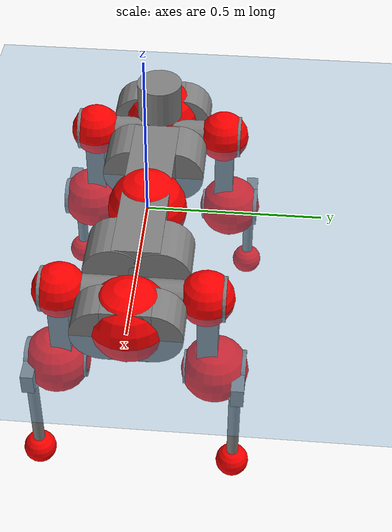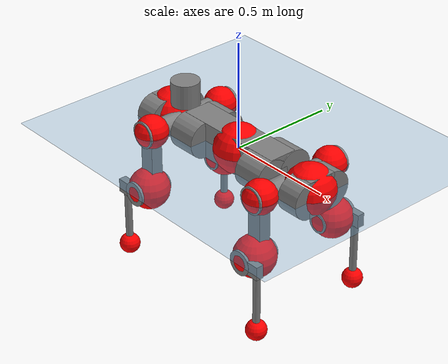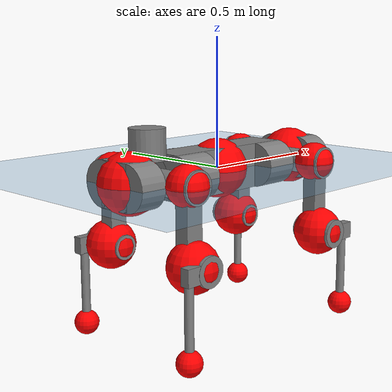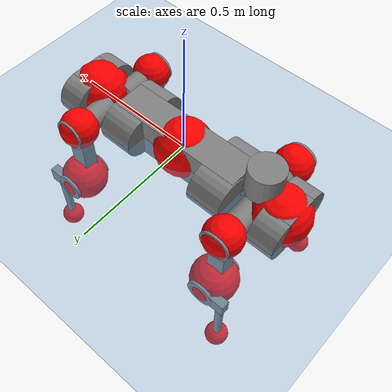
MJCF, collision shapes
<mujoco model="anymal_c">
  <compiler angle="radian" assetdir="assets" balanceinertia="true" inertiafromgeom="false"/>

  <option timestep="0.005" density="1.2" viscosity="2e-05"/>

  <size nkey="1"/>

  <visual>
    <quality shadowsize="8192"/>
    <map shadowclip="0.5"/>
  </visual>

  <default>
    <default class="/">
      <material specular="0" shininess="0.25"/>
      <geom contype="0" conaffinity="0" group="1" solref="-1000 -80"/>
      <site size="0.01 0.005 0.005" group="5"/>
      <general forcelimited="true" forcerange="-80 80" biastype="affine" gainprm="80" biasprm="0 -80 -2"/>
      <default class="anymal_c">
        <joint armature="0.01" damping="0.01" frictionloss="0.1"/>
        <default class="visual">
          <geom type="mesh" group="2"/>
          <default class="visual_zflip"/>
        </default>
        <default class="collision">
          <geom type="cylinder" group="3"/>
          <default class="foot">
            <geom size="0.03 0 0" type="sphere" condim="6" priority="1" friction="0.8 0.02 0.01" solimp="0.015 1 0.03"/>
          </default>
        </default>
      </default>
      <default class="reward_collision_sphere">
        <geom group="5" rgba="1 0 0 1"/>
      </default>
    </default>
  </default>

  <asset>
    <texture type="skybox" colorspace="auto" name="//unnamed_texture_0" builtin="gradient" rgb1="0.95 0.95 0.95" rgb2="0.95 0.95 0.95" width="100" height="600"/>
    <texture type="2d" colorspace="auto" name="texplane" builtin="checker" rgb1="0.345 0.575 0.748" rgb2="0.345 0.575 0.748" markrgb="1 1 1" width="512" height="512"/>
    <texture type="2d" colorspace="linear" name="base" file="base.png"/>
    <texture type="2d" colorspace="linear" name="top_shell" file="top_shell.png"/>
    <texture type="2d" colorspace="linear" name="bottom_shell" file="bottom_shell.png"/>
    <texture type="2d" colorspace="linear" name="remote" file="remote.png"/>
    <texture type="2d" colorspace="linear" name="hatch" file="hatch.png"/>
    <texture type="2d" colorspace="linear" name="handle" file="handle.png"/>
    <texture type="2d" colorspace="linear" name="face" file="face.png"/>
    <texture type="2d" colorspace="linear" name="battery" file="battery.png"/>
    <texture type="2d" colorspace="linear" name="lidar_cage" file="lidar_cage.png"/>
    <texture type="2d" colorspace="linear" name="depth_camera" file="depth_camera.png"/>
    <texture type="2d" colorspace="linear" name="wide_angle_camera" file="wide_angle_camera.png"/>
    <texture type="2d" colorspace="linear" name="lidar" file="lidar.png"/>
    <texture type="2d" colorspace="linear" name="drive" file="drive.png"/>
    <texture type="2d" colorspace="linear" name="hip_l" file="hip_l.png"/>
    <texture type="2d" colorspace="linear" name="shank_l" file="shank_l.png"/>
    <texture type="2d" colorspace="linear" name="foot" file="foot.png"/>
    <texture type="2d" colorspace="linear" name="thigh" file="thigh.png"/>
    <texture type="2d" colorspace="linear" name="shank_r" file="shank_r.png"/>
    <texture type="2d" colorspace="linear" name="hip_r" file="hip_r.png"/>
    <material name="MatPlane" class="/" texture="texplane" texuniform="true" texrepeat="2 2" specular="0.9" shininess="0.5"/>
    <material name="black_plastic" class="/" rgba="0.007 0.007 0.007 1"/>
    <material name="green" class="/" rgba="0.052 0.178 0.033 1"/>
    <material name="red" class="/" rgba="0.178 0.006 0.005 1"/>
    <material name="yellow" class="/" rgba="0.178 0.119 0.006 1"/>
    <material name="lwl" class="/" rgba="0.8 0.8 0.8 1"/>
    <material name="base" class="/" texture="base"/>
    <material name="top_shell" class="/" texture="top_shell"/>
    <material name="bottom_shell" class="/" texture="bottom_shell"/>
    <material name="hip_l" class="/" texture="hip_l"/>
    <material name="thigh" class="/" texture="thigh"/>
    <material name="shank_l" class="/" texture="shank_l"/>
    <material name="foot" class="/" texture="foot"/>
    <material name="hip_r" class="/" texture="hip_r"/>
    <material name="shank" class="/" texture="shank_r"/>
    <material name="hatch" class="/" texture="hatch"/>
    <material name="remote" class="/" texture="remote"/>
    <material name="handle" class="/" texture="handle"/>
    <material name="face" class="/" texture="face"/>
    <material name="depth_camera" class="/" texture="depth_camera"/>
    <material name="wide_angle_camera" class="/" texture="wide_angle_camera"/>
    <material name="battery" class="/" texture="battery"/>
    <material name="lidar_cage" class="/" texture="lidar_cage"/>
    <material name="lidar" class="/" texture="lidar"/>
    <material name="drive" class="/" texture="drive"/>
    <mesh name="base_0" class="/" file="base_0.obj"/>
    <mesh name="base_1" class="/" file="base_1.obj"/>
    <mesh name="base_2" class="/" file="base_2.obj"/>
    <mesh name="base_3" class="/" file="base_3.obj"/>
    <mesh name="base_4" class="/" file="base_4.obj"/>
    <mesh name="base_5" class="/" file="base_5.obj"/>
    <mesh name="top_shell" class="/" file="top_shell.obj"/>
    <mesh name="bottom_shell" class="/" file="bottom_shell.obj"/>
    <mesh name="remote" class="/" file="remote.obj"/>
    <mesh name="handle" class="/" file="handle.obj"/>
    <mesh name="face" class="/" file="face.obj"/>
    <mesh name="wide_angle_camera" class="/" file="wide_angle_camera.obj"/>
    <mesh name="depth_camera" class="/" file="depth_camera.obj"/>
    <mesh name="battery" class="/" file="battery.obj"/>
    <mesh name="lidar_cage" class="/" file="lidar_cage.obj"/>
    <mesh name="lidar" class="/" file="lidar.obj"/>
    <mesh name="drive" class="/" file="drive.obj"/>
    <mesh name="hip_l" class="/" file="hip_l.obj"/>
    <mesh name="thigh" class="/" file="thigh.obj"/>
    <mesh name="shank_l" class="/" file="shank_l.obj"/>
    <mesh name="foot" class="/" file="foot.obj"/>
    <mesh name="hip_r" class="/" file="hip_r.obj"/>
    <mesh name="hatch" class="/" file="hatch.obj"/>
    <mesh name="shank_r" class="/" file="shank_r.obj"/>
  </asset>

  <worldbody>
    <geom name="floor" class="/" size="100 100 0.125" type="plane" group="0" material="MatPlane"/>
    <light name="toplight_shadow" class="/" pos="0 0 5" dir="0.0990148 0.0990148 -0.990148" type="directional" ambient="0.04 0.04 0.04" diffuse="0.55 0.55 0.55" specular="0.12 0.12 0.12"/>
    <light name="toplight_fill" class="/" pos="0 0 5" dir="0.0990148 0.0990148 -0.990148" type="directional" castshadow="false" ambient="0.04 0.04 0.04" diffuse="0.3 0.3 0.3" specular="0.08 0.08 0.08"/>
    <body name="trunk" childclass="anymal_c" pos="2.0586e-05 6.96082e-05 -0.000167122" quat="1 -1.92552e-05 -3.96269e-05 -0.000107889">
      <inertial pos="0.00245526 0.00167743 0.0482385" quat="0.500335 0.49967 0.500072 0.499924" mass="17.1185" diaginertia="0.593866 0.408493 0.199105"/>
      <joint name="//unnamed_joint_0" type="free" armature="0" damping="0" frictionloss="0"/>
      <geom name="//unnamed_geom_1" class="visual" material="green" mesh="base_0"/>
      <geom name="//unnamed_geom_2" class="visual" material="yellow" mesh="base_1"/>
      <geom name="//unnamed_geom_3" class="visual" material="red" mesh="base_2"/>
      <geom name="//unnamed_geom_4" class="visual" material="black_plastic" mesh="base_3"/>
      <geom name="//unnamed_geom_5" class="visual" material="lwl" mesh="base_4"/>
      <geom name="//unnamed_geom_6" class="visual" material="base" mesh="base_5"/>
      <geom name="trunk_1" class="collision" size="0.278285 0.0671722 0.0863643" type="box"/>
      <geom name="trunk_2" class="collision" size="0.0863643 0.0695712" pos="0.213348 0.064166 0" quat="0.707107 0 0.707107 0"/>
      <geom name="trunk_3" class="collision" size="0.0863643 0.0695712" pos="-0.213348 0.064166 0" quat="0.707107 0 0.707107 0"/>
      <geom name="trunk_4" class="collision" size="0.0863643 0.0695712" pos="0.213348 -0.064166 0" quat="0.707107 0 0.707107 0"/>
      <geom name="trunk_5" class="collision" size="0.0863643 0.0695712" pos="-0.213348 -0.064166 0" quat="0.707107 0 0.707107 0"/>
      <geom name="//unnamed_geom_12" class="visual" material="top_shell" mesh="top_shell"/>
      <geom name="//unnamed_geom_13" class="visual" material="bottom_shell" mesh="bottom_shell"/>
      <geom name="//unnamed_geom_14" class="visual" material="remote" mesh="remote"/>
      <geom name="//unnamed_geom_15" class="visual" material="handle" mesh="handle"/>
      <geom name="//unnamed_geom_16" class="visual" pos="0.406586 0 0" quat="1 0 0 0" material="face" mesh="face"/>
      <geom name="trunk_6" class="collision" size="0.0527782 0.0671722 0.0863643" pos="0.460536 0 0" type="box"/>
      <geom name="//unnamed_geom_18" class="collision" size="0.0863643 0.0527782" pos="0.460536 0.064166 0" quat="0.707107 0 0.707107 0"/>
      <geom name="//unnamed_geom_19" class="collision" size="0.0863643 0.0527782" pos="0.460536 -0.064166 0" quat="0.707107 0 0.707107 0"/>
      <geom name="//unnamed_geom_20" class="visual" pos="0.452836 0 -0.0286549" quat="0.965926 0 0.258819 0" material="depth_camera" mesh="depth_camera"/>
      <geom name="//unnamed_geom_21" class="visual" pos="0.503206 0 0.0146892" material="wide_angle_camera" mesh="wide_angle_camera"/>
      <geom name="//unnamed_geom_22" class="visual_zflip" pos="-0.406586 0 0" quat="0 0 0 1" material="face" mesh="face"/>
      <geom name="trunk_7" class="collision" size="0.0527782 0.0671722 0.0863643" pos="-0.460536 0 0" quat="0 0 0 1" type="box"/>
      <geom name="//unnamed_geom_24" class="collision" size="0.0863643 0.0527782" pos="-0.460536 -0.064166 0" quat="0 -0.707107 0 0.707107"/>
      <geom name="//unnamed_geom_25" class="collision" size="0.0863643 0.0527782" pos="-0.460536 0.064166 0" quat="0 -0.707107 0 0.707107"/>
      <geom name="//unnamed_geom_26" class="visual" pos="-0.452836 0 -0.0286549" quat="0 -0.258819 0 0.965926" material="depth_camera" mesh="depth_camera"/>
      <geom name="//unnamed_geom_27" class="visual_zflip" pos="-0.503206 0 0.0146892" quat="0 0 0 1" material="wide_angle_camera" mesh="wide_angle_camera"/>
      <geom name="//unnamed_geom_28" class="visual" material="battery" mesh="battery"/>
      <geom name="//unnamed_geom_29" class="visual" pos="0 0.0692445 0.0285026" quat="0.683013 -0.183013 0.183013 0.683013" material="depth_camera" mesh="depth_camera"/>
      <geom name="//unnamed_geom_30" class="visual" pos="0 -0.0692445 0.0285026" quat="0.683013 0.183013 0.183013 -0.683013" material="depth_camera" mesh="depth_camera"/>
      <geom name="//unnamed_geom_31" class="visual" pos="-0.357051 0 0.0721214" quat="1 0 0 0" material="lidar_cage" mesh="lidar_cage"/>
      <geom name="trunk_8" class="collision" size="0.0671722 0.0575762" pos="-0.357051 0 0.130996"/>
      <geom name="//unnamed_geom_33" class="visual" pos="-0.357051 -2.52427e-05 0.139533" quat="0.707107 0 0 -0.707107" material="lidar" mesh="lidar"/>
      <geom name="//unnamed_geom_34" class="visual" pos="0.294174 0.0953552 -1.11413e-09" quat="0.258819 0.965926 0 0" material="drive" mesh="drive"/>
      <geom name="//unnamed_geom_35" class="visual" pos="0.294174 -0.0953552 1.11413e-09" quat="0.258819 -0.965926 0 0" material="drive" mesh="drive"/>
      <geom name="//unnamed_geom_36" class="visual" pos="-0.294174 0.0953552 1.11413e-09" quat="0 0 0.965926 -0.258819" material="drive" mesh="drive"/>
      <geom name="//unnamed_geom_37" class="visual" pos="-0.294174 -0.0953552 -1.11413e-09" quat="0 0 -0.965926 -0.258819" material="drive" mesh="drive"/>
      <geom name="//unnamed_geom_38" class="visual" pos="0.113785 0 0.0716308" quat="1 0 0 0" material="hatch" mesh="hatch"/>
      <geom name="//unnamed_geom_39" class="reward_collision_sphere" size="0.115152"/>
      <geom name="//unnamed_geom_40" class="reward_collision_sphere" size="0.115152" pos="0.441409 0 0"/>
      <geom name="//unnamed_geom_41" class="reward_collision_sphere" size="0.115152" pos="-0.441409 0 0"/>
      <site name="imu" pos="0.239435 0.0111746 0.0404783" size="0.00959603"/>
      <camera name="track" pos="0 -1.83331 0" quat="0.707107 0.707107 0 0" mode="trackcom"/>
      <camera name="ego_camera" pos="0.441409 0 -0.0392497" quat="-0.5 -0.5 0.5 0.5"/>
      <body name="LF_HIP" pos="0.294914 0.095929 0.000962396" quat="0.258736 0.965948 7.95086e-05 0.000376741">
        <inertial pos="0.054471 -0.0134244 -0.00716006" quat="-0.129608 0.708655 -0.135856 0.680112" mass="2.49407" diaginertia="0.00535867 0.00324187 0.00299626"/>
        <joint name="LF_HAA" pos="0 0 0" axis="0.999996 -0.001202 -0.00239872" range="-0.699183 0.486919" armature="0.00939791" damping="0.00607559" frictionloss="0.0911517"/>
        <geom name="//unnamed_geom_42" class="visual" pos="0 -6.55392e-05 1.07648e-05" quat="0.258819 -0.965926 0 0" material="hip_l" mesh="hip_l"/>
        <geom name="//unnamed_geom_43" class="visual" pos="0.0587564 -0.0703729 -0.0411075" quat="0.183013 -0.683013 0.683013 0.183013" material="drive" mesh="drive"/>
        <geom name="//unnamed_geom_44" class="collision" size="0.0479801 0.0671722" pos="0.0587564 -0.010963 -0.00677549" quat="-0.353553 -0.612372 0.612372 -0.353553"/>
        <body name="LF_THIGH" pos="0.0591309 -0.0663201 -0.0417999" quat="0.183083 -0.682887 0.68309 0.183122">
          <inertial pos="0.0307177 -3.0991e-05 -0.240293" quat="0.993138 -0.00537851 -0.0808554 0.0843281" mass="2.6526" diaginertia="0.0275683 0.0191573 0.00364411"/>
          <joint name="LF_HFE" pos="0 0 0" axis="0.999997 -0.00108873 0.00198432" stiffness="0.00506087" range="-3.14261 3.11808" armature="0.00949716" damping="0.00807623" frictionloss="0.0985212"/>
          <geom name="//unnamed_geom_45" class="visual" pos="0.00127835 2.01438e-06 0" quat="0.707107 0 0 -0.707107" material="thigh" mesh="thigh"/>
          <geom name="//unnamed_geom_46" class="collision" size="0.0623742 0.0383841" pos="0.0392363 0 0" quat="0.5 0.5 -0.5 -0.5"/>
          <geom name="//unnamed_geom_47" class="collision" size="0.0359851 0.0287881 0.135605" pos="0.0294272 0 -0.138663" quat="0.707107 0 0 -0.707107" type="box"/>
          <geom name="//unnamed_geom_48" class="visual" pos="0.0983851 0 -0.279654" quat="1 0 0 0" material="drive" mesh="drive"/>
          <geom name="//unnamed_geom_49" class="collision" size="0.0479801 0.0671722" pos="0.0297215 0 -0.279654" quat="0.707107 0 0.707107 0"/>
          <geom name="//unnamed_geom_50" class="reward_collision_sphere" size="0.0767682" pos="0.0245227 0 0"/>
          <body name="LF_SHANK" pos="0.0990263 -0.000553672 -0.279788" quat="1 0.000461559 0.000712219 -0.00028809">
            <inertial pos="0.0050615 -0.0560613 -0.0793224" quat="0.992921 -0.116056 -0.000908782 -0.0252731" mass="0.523666" diaginertia="0.00924425 0.00587882 0.00101711"/>
            <joint name="LF_KFE" pos="0 0 0" axis="0.999998 -0.000710183 0.00175154" range="-3.12996 3.13484" armature="0.00998867" damping="0.0133986" frictionloss="0.0950596"/>
            <geom name="//unnamed_geom_51" class="visual" pos="0.000416843 0.00222263 0" quat="0.707107 0 0 -0.707107" material="shank_l" mesh="shank_l"/>
            <geom name="LF_kfe_act" class="collision" size="0.0575762 0.0191921" pos="0.0196182 0 0" quat="0.5 0.5 -0.5 -0.5"/>
            <geom name="//unnamed_geom_53" class="collision" size="0.0551762 0.0323866 0.0182325" pos="0.0196182 -0.0527068 0" quat="0.5 0.5 -0.5 -0.5" type="box"/>
            <geom name="//unnamed_geom_54" class="visual" pos="0.0128008 -0.0799037 -0.331631" quat="0.382683 0 0 -0.92388" material="foot" mesh="foot"/>
            <geom name="LF_calf" class="collision" size="0.016793 0.135546" pos="0.0128009 -0.08062 -0.165815" quat="0.707107 0 0 -0.707107"/>
            <geom name="LF_foot" class="foot" size="0.030671" pos="0.0128009 -0.08062 -0.309553" quat="0.707107 0 0 -0.707107"/>
            <geom name="//unnamed_geom_57" class="reward_collision_sphere" size="0.0959603" pos="-0.0490454 0 0"/>
            <geom name="//unnamed_geom_58" class="reward_collision_sphere" size="0.0479801" pos="0.0128009 -0.08062 -0.309553"/>
            <site name="LF_foot" class="foot" pos="0.0128009 -0.08062 -0.309553" quat="0.707107 0 0 -0.707107" size="0.00959603"/>
          </body>
        </body>
      </body>
      <body name="RF_HIP" pos="0.29375 -0.0955034 -0.000136186" quat="0.25862 -0.965979 0.00019001 -1.40448e-05">
        <inertial pos="0.0555424 0.0147083 -0.00844484" quat="0.135201 0.679412 0.128023 0.70974" mass="2.39013" diaginertia="0.00520336 0.00316136 0.00299373"/>
        <joint name="RF_HAA" pos="0 0 0" axis="0.999997 0.000130689 0.0025947" range="-0.482076 0.690192" armature="0.00972988" damping="0.00638674" frictionloss="0.0972474"/>
        <geom name="//unnamed_geom_59" class="visual" pos="0 6.55387e-05 1.07647e-05" quat="0.258819 0.965926 0 0" material="hip_r" mesh="hip_r"/>
        <geom name="//unnamed_geom_60" class="visual" pos="0.0587564 0.0703729 -0.0411075" quat="0.183013 0.683013 0.683013 -0.183013" material="drive" mesh="drive"/>
        <geom name="//unnamed_geom_61" class="collision" size="0.0479801 0.0671722" pos="0.0587564 0.010963 -0.00677549" quat="-0.353553 0.612372 0.612372 0.353553"/>
        <body name="RF_THIGH" pos="0.0611788 0.0660792 -0.0422019" quat="0.183444 0.683018 0.682979 -0.182686">
          <inertial pos="0.030011 -0.000509707 -0.240885" quat="0.992733 -0.00597976 -0.0807011 0.0890683" mass="2.81661" diaginertia="0.0276279 0.0201129 0.00391172"/>
          <joint name="RF_HFE" pos="0 0 0" axis="0.999961 -0.00874174 -0.00131705" stiffness="0.0058215" range="-3.09909 3.10667" armature="0.00944179" damping="0.00366795" frictionloss="0.0972098"/>
          <geom name="//unnamed_geom_62" class="visual" pos="0.00127835 2.01438e-06 0" quat="0.707107 0 0 -0.707107" material="thigh" mesh="thigh"/>
          <geom name="//unnamed_geom_63" class="collision" size="0.0623742 0.0383841" pos="0.0392363 0 0" quat="0.5 0.5 0.5 0.5"/>
          <geom name="//unnamed_geom_64" class="collision" size="0.0359851 0.0287881 0.135605" pos="0.0294272 0 -0.138663" quat="0.707107 0 0 0.707107" type="box"/>
          <geom name="//unnamed_geom_65" class="visual" pos="0.0983851 0 -0.279654" quat="1 0 0 0" material="drive" mesh="drive"/>
          <geom name="//unnamed_geom_66" class="collision" size="0.0479801 0.0671722" pos="0.0297215 0 -0.279654" quat="0.707107 0 0.707107 0"/>
          <geom name="//unnamed_geom_67" class="reward_collision_sphere" size="0.0767682" pos="0.0245227 0 0"/>
          <body name="RF_SHANK" pos="0.0999003 -0.000310047 -0.280304" quat="1 -8.39686e-05 7.73253e-05 1.18554e-05">
            <inertial pos="0.00654669 0.0564128 -0.0769123" quat="0.993233 0.113628 0.000998476 0.0240104" mass="0.50661" diaginertia="0.00919393 0.00601732 0.00102486"/>
            <joint name="RF_KFE" pos="0 0 0" axis="0.999921 -0.00613953 0.010989" range="-3.1506 3.11632" armature="0.00960224" damping="0.0105822" frictionloss="0.0854524"/>
            <geom name="//unnamed_geom_68" class="visual" pos="0.00041684 -0.00222262 0" quat="0.707107 0 0 0.707107" material="shank" mesh="shank_r"/>
            <geom name="RF_kfe_act" class="collision" size="0.0575762 0.0191921" pos="0.0196182 0 0" quat="0.5 0.5 0.5 0.5"/>
            <geom name="//unnamed_geom_70" class="collision" size="0.0551762 0.0323866 0.0182325" pos="0.0196182 0.0527068 0" quat="0.5 0.5 0.5 0.5" type="box"/>
            <geom name="//unnamed_geom_71" class="visual" pos="0.012801 0.0799037 -0.331631" quat="0.382683 0 0 0.92388" material="foot" mesh="foot"/>
            <geom name="RF_calf" class="collision" size="0.016793 0.135546" pos="0.0128009 0.08062 -0.165815" quat="0.707107 0 0 0.707107"/>
            <geom name="RF_foot" class="foot" size="0.0297707" pos="0.0128009 0.08062 -0.309553" quat="0.707107 0 0 0.707107"/>
            <geom name="//unnamed_geom_74" class="reward_collision_sphere" size="0.0959603" pos="-0.0490454 0 0"/>
            <geom name="//unnamed_geom_75" class="reward_collision_sphere" size="0.0479801" pos="0.0128009 0.08062 -0.309553"/>
            <site name="RF_foot" class="foot" pos="0.0128009 0.08062 -0.309553" quat="0.707107 0 0 0.707107" size="0.00959603"/>
          </body>
        </body>
      </body>
      <body name="LH_HIP" pos="-0.293763 0.096235 0.000332023" quat="-2.2693e-06 -1.71225e-07 0.965926 -0.258817">
        <inertial pos="0.056618 0.012641 -0.00787368" quat="0.136981 0.670668 0.130979 0.717137" mass="2.38619" diaginertia="0.0052569 0.00317483 0.00302825"/>
        <joint name="LH_HAA" pos="0 0 0" axis="1 0.000636117 -2.20807e-05" range="-0.497017 0.741606" armature="0.00954493" damping="0.0100692" frictionloss="0.0920616"/>
        <geom name="//unnamed_geom_76" class="visual" pos="0 6.55387e-05 1.07647e-05" quat="-0.258819 -0.965926 0 0" material="hip_r" mesh="hip_r"/>
        <geom name="//unnamed_geom_77" class="visual" pos="0.0587564 0.0703729 -0.0411075" quat="0.183013 0.683013 0.683013 -0.183013" material="drive" mesh="drive"/>
        <geom name="//unnamed_geom_78" class="collision" size="0.0479801 0.0671722" pos="0.0587564 0.010963 -0.00677549" quat="-0.353553 0.612372 0.612372 0.353553"/>
        <body name="LH_THIGH" pos="0.0581838 0.065688 -0.0414029" quat="0.182968 0.683069 0.682939 -0.183123">
          <inertial pos="0.0311738 -0.00024325 -0.240818" quat="0.993032 -0.00241317 -0.0819492 0.0846565" mass="2.74113" diaginertia="0.0279748 0.0199178 0.00384199"/>
          <joint name="LH_HFE" pos="0 0 0" axis="0.999998 0.001283 -0.00136911" range="-3.13859 3.14366" armature="0.00958379" damping="0.00703381" frictionloss="0.0955086"/>
          <geom name="//unnamed_geom_79" class="visual" pos="0.00127835 2.01438e-06 0" quat="0.707107 0 0 -0.707107" material="thigh" mesh="thigh"/>
          <geom name="//unnamed_geom_80" class="collision" size="0.0623742 0.0383841" pos="0.0392363 0 0" quat="0.5 0.5 -0.5 -0.5"/>
          <geom name="//unnamed_geom_81" class="collision" size="0.0359851 0.0287881 0.135605" pos="0.0294272 0 -0.138663" quat="0.707107 0 0 -0.707107" type="box"/>
          <geom name="//unnamed_geom_82" class="visual" pos="0.0983851 0 -0.279654" quat="1 0 0 0" material="drive" mesh="drive"/>
          <geom name="//unnamed_geom_83" class="collision" size="0.0479801 0.0671722" pos="0.0297215 0 -0.279654" quat="0.707107 0 0.707107 0"/>
          <geom name="//unnamed_geom_84" class="reward_collision_sphere" size="0.0767682" pos="0.0245227 0 0"/>
          <body name="LH_SHANK" pos="0.0991477 -0.000666373 -0.280197" quat="1 -0.000199351 -0.000150466 -8.63143e-05">
            <inertial pos="0.00595657 0.0569913 -0.0790927" quat="0.99297 0.115612 -0.000928565 0.0253534" mass="0.525829" diaginertia="0.00958984 0.00627024 0.00107747"/>
            <joint name="LH_KFE" pos="0 0 0" axis="0.999991 0.000824136 -0.00427946" range="-3.14236 3.09399" armature="0.00945723" damping="0.0113048" frictionloss="0.0915856"/>
            <geom name="//unnamed_geom_85" class="visual" pos="0.00041684 -0.00222262 0" quat="-0.707107 0 0 -0.707107" material="shank" mesh="shank_r"/>
            <geom name="LH_kfe_act" class="collision" size="0.0575762 0.0191921" pos="0.0196182 0 0" quat="0.5 0.5 -0.5 -0.5"/>
            <geom name="//unnamed_geom_87" class="collision" size="0.0551762 0.0323866 0.0182325" pos="0.0196182 0.0527068 0" quat="0.5 0.5 -0.5 -0.5" type="box"/>
            <geom name="//unnamed_geom_88" class="visual" pos="0.012801 0.0799037 -0.331631" quat="-0.382683 0 0 -0.92388" material="foot" mesh="foot"/>
            <geom name="LH_calf" class="collision" size="0.016793 0.135546" pos="0.0128009 0.08062 -0.165815" quat="0.707107 0 0 -0.707107"/>
            <geom name="LH_foot" class="foot" size="0.028083" pos="0.0128009 0.08062 -0.309553" quat="0.707107 0 0 -0.707107"/>
            <geom name="//unnamed_geom_91" class="reward_collision_sphere" size="0.0959603" pos="-0.0490454 0 0"/>
            <geom name="//unnamed_geom_92" class="reward_collision_sphere" size="0.0479801" pos="0.0128009 0.08062 -0.309553"/>
            <site name="LH_foot" class="foot" pos="0.0128009 0.08062 -0.309553" quat="0.707107 0 0 -0.707107" size="0.00959603"/>
          </body>
        </body>
      </body>
      <body name="RH_HIP" pos="-0.294087 -0.0948417 0.000320015" quat="0.000664661 -0.000109113 -0.965987 -0.258591">
        <inertial pos="0.0554393 -0.0150396 -0.00736765" quat="-0.131236 0.716594 -0.135306 0.671538" mass="2.47975" diaginertia="0.00530635 0.00322562 0.00300506"/>
        <joint name="RH_HAA" pos="0 0 0" axis="0.999992 0.00137557 0.0038703" stiffness="0.00194562" range="-0.747403 0.48224" armature="0.00891472" damping="0.00905894" frictionloss="0.094343"/>
        <geom name="//unnamed_geom_93" class="visual" pos="0 -6.55392e-05 1.07648e-05" quat="-0.258819 0.965926 0 0" material="hip_l" mesh="hip_l"/>
        <geom name="//unnamed_geom_94" class="visual" pos="0.0587564 -0.0703729 -0.0411075" quat="-0.183013 0.683013 -0.683013 -0.183013" material="drive" mesh="drive"/>
        <geom name="//unnamed_geom_95" class="collision" size="0.0479801 0.0671722" pos="0.0587564 -0.010963 -0.00677549" quat="0.353553 0.612372 -0.612372 0.353553"/>
        <body name="RH_THIGH" pos="0.0582285 -0.0659286 -0.0431984" quat="-0.182852 0.683177 -0.682867 -0.183104">
          <inertial pos="0.0305231 0.00217089 -0.241486" quat="0.993463 -0.00664367 -0.0778129 0.0832622" mass="2.63234" diaginertia="0.0266573 0.0188843 0.0036769"/>
          <joint name="RH_HFE" pos="0 0 0" axis="1 5.32206e-05 0.000504039" range="-3.16063 3.11191" armature="0.0107452" damping="0.00846071" frictionloss="0.0921907"/>
          <geom name="//unnamed_geom_96" class="visual" pos="0.00127835 2.01438e-06 0" quat="0.707107 0 0 -0.707107" material="thigh" mesh="thigh"/>
          <geom name="//unnamed_geom_97" class="collision" size="0.0623742 0.0383841" pos="0.0392363 0 0" quat="0.5 0.5 0.5 0.5"/>
          <geom name="//unnamed_geom_98" class="collision" size="0.0359851 0.0287881 0.135605" pos="0.0294272 0 -0.138663" quat="0.707107 0 0 0.707107" type="box"/>
          <geom name="//unnamed_geom_99" class="visual" pos="0.0983851 0 -0.279654" quat="1 0 0 0" material="drive" mesh="drive"/>
          <geom name="//unnamed_geom_100" class="collision" size="0.0479801 0.0671722" pos="0.0297215 0 -0.279654" quat="0.707107 0 0.707107 0"/>
          <geom name="//unnamed_geom_101" class="reward_collision_sphere" size="0.0767682" pos="0.0245227 0 0"/>
          <body name="RH_SHANK" pos="0.0978942 8.73041e-05 -0.280576" quat="1 6.61586e-05 -0.000203934 -0.000116628">
            <inertial pos="0.00460751 -0.0559028 -0.0793501" quat="0.992406 -0.120773 -0.0084474 -0.0217203" mass="0.515559" diaginertia="0.00934261 0.0061008 0.00105799"/>
            <joint name="RH_KFE" pos="0 0 0" axis="0.999998 -0.00106604 0.00140116" stiffness="0.00246074" range="-3.10658 3.16221" armature="0.00958178" damping="0.00785871" frictionloss="0.0979781"/>
            <geom name="//unnamed_geom_102" class="visual" pos="0.000416843 0.00222263 0" quat="0.707107 0 0 -0.707107" material="shank_l" mesh="shank_l"/>
            <geom name="RH_kfe_act" class="collision" size="0.0575762 0.0191921" pos="0.0196182 0 0" quat="0.5 0.5 0.5 0.5"/>
            <geom name="//unnamed_geom_104" class="collision" size="0.0551762 0.0323866 0.0182325" pos="0.0196182 -0.0527068 0" quat="0.5 0.5 0.5 0.5" type="box"/>
            <geom name="//unnamed_geom_105" class="visual" pos="0.0128008 -0.0799037 -0.331631" quat="0.382683 0 0 -0.92388" material="foot" mesh="foot"/>
            <geom name="RH_calf" class="collision" size="0.016793 0.135546" pos="0.0128009 -0.08062 -0.165815" quat="0.707107 0 0 0.707107"/>
            <geom name="RH_foot" class="foot" size="0.0248029" pos="0.0128009 -0.08062 -0.309553" quat="0.707107 0 0 0.707107"/>
            <geom name="//unnamed_geom_108" class="reward_collision_sphere" size="0.0959603" pos="-0.0490454 0 0"/>
            <geom name="//unnamed_geom_109" class="reward_collision_sphere" size="0.0479801" pos="0.0128009 -0.08062 -0.309553"/>
            <site name="RH_foot" class="foot" pos="0.0128009 -0.08062 -0.309553" quat="0.707107 0 0 0.707107" size="0.00959603"/>
          </body>
        </body>
      </body>
    </body>
  </worldbody>

  <contact>
    <pair class="/" geom1="floor" geom2="LF_foot" name="//unnamed_contact_0"/>
    <pair class="/" geom1="floor" geom2="RF_foot" name="//unnamed_contact_1"/>
    <pair class="/" geom1="floor" geom2="LH_foot" name="//unnamed_contact_2"/>
    <pair class="/" geom1="floor" geom2="RH_foot" name="//unnamed_contact_3"/>
  </contact>

  <actuator>
    <general name="LF_HAA" class="/" joint="LF_HAA" forcerange="-79.7962 79.7962" gainprm="80.4152" biasprm="0 -80.4152 -1.8968"/>
    <general name="LF_HFE" class="/" joint="LF_HFE" forcerange="-70.6733 70.6733" gainprm="80.4152" biasprm="0 -80.4152 -1.8968"/>
    <general name="LF_KFE" class="/" joint="LF_KFE" forcerange="-75.9122 75.9122" gainprm="80.4152" biasprm="0 -80.4152 -1.8968"/>
    <general name="RF_HAA" class="/" joint="RF_HAA" forcerange="-78.9718 78.9718" gainprm="80.4152" biasprm="0 -80.4152 -1.8968"/>
    <general name="RF_HFE" class="/" joint="RF_HFE" forcerange="-75.0611 75.0611" gainprm="80.4152" biasprm="0 -80.4152 -1.8968"/>
    <general name="RF_KFE" class="/" joint="RF_KFE" forcerange="-79.7692 79.7692" gainprm="80.4152" biasprm="0 -80.4152 -1.8968"/>
    <general name="LH_HAA" class="/" joint="LH_HAA" forcerange="-77.0469 77.0469" gainprm="80.4152" biasprm="0 -80.4152 -1.8968"/>
    <general name="LH_HFE" class="/" joint="LH_HFE" forcerange="-77.0811 77.0811" gainprm="80.4152" biasprm="0 -80.4152 -1.8968"/>
    <general name="LH_KFE" class="/" joint="LH_KFE" forcerange="-80.2519 80.2519" gainprm="80.4152" biasprm="0 -80.4152 -1.8968"/>
    <general name="RH_HAA" class="/" joint="RH_HAA" forcerange="-71.2274 71.2274" gainprm="80.4152" biasprm="0 -80.4152 -1.8968"/>
    <general name="RH_HFE" class="/" joint="RH_HFE" forcerange="-76.2276 76.2276" gainprm="80.4152" biasprm="0 -80.4152 -1.8968"/>
    <general name="RH_KFE" class="/" joint="RH_KFE" forcerange="-77.1886 77.1886" gainprm="80.4152" biasprm="0 -80.4152 -1.8968"/>
  </actuator>

  <sensor>
    <gyro site="imu" name="imu_angular_velocity"/>
    <velocimeter site="imu" name="imu_linear_velocity"/>
    <framelinvel objtype="site" objname="LF_foot" name="LF_foot_global_linear_velocity"/>
    <framelinvel objtype="site" objname="RF_foot" name="RF_foot_global_linear_velocity"/>
    <framelinvel objtype="site" objname="LH_foot" name="LH_foot_global_linear_velocity"/>
    <framelinvel objtype="site" objname="RH_foot" name="RH_foot_global_linear_velocity"/>
  </sensor>

  <keyframe>
    <key name="home" qpos="0 0 0.55 1 0 0 0 0 0.4 -0.8 0 -0.4 0.8 0 -0.4 0.8 0 0.4 -0.8"/>
  </keyframe>
</mujoco>
